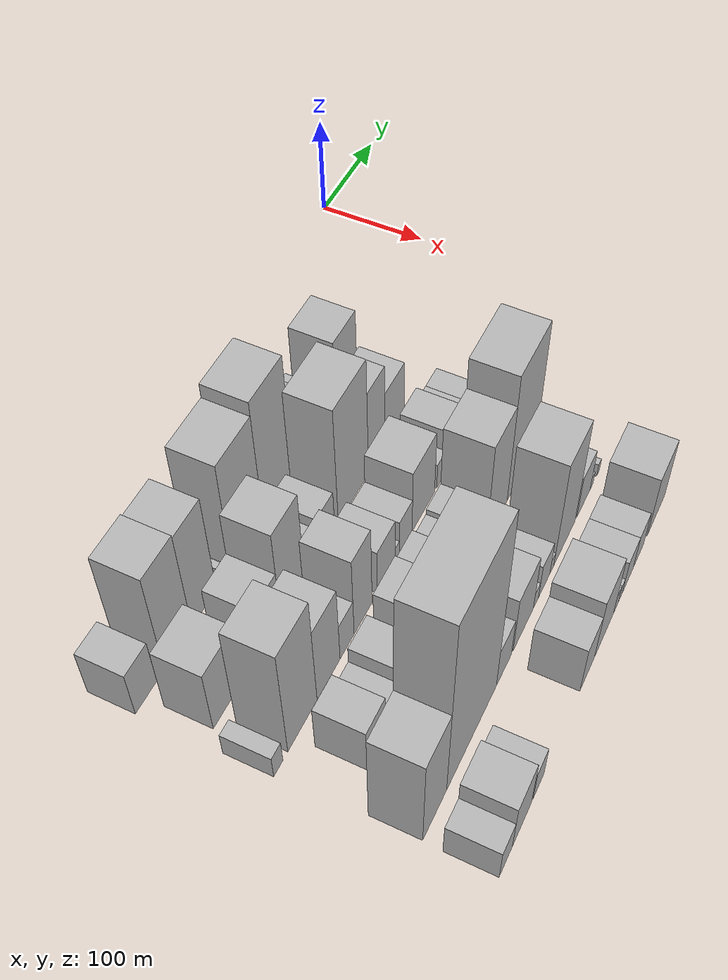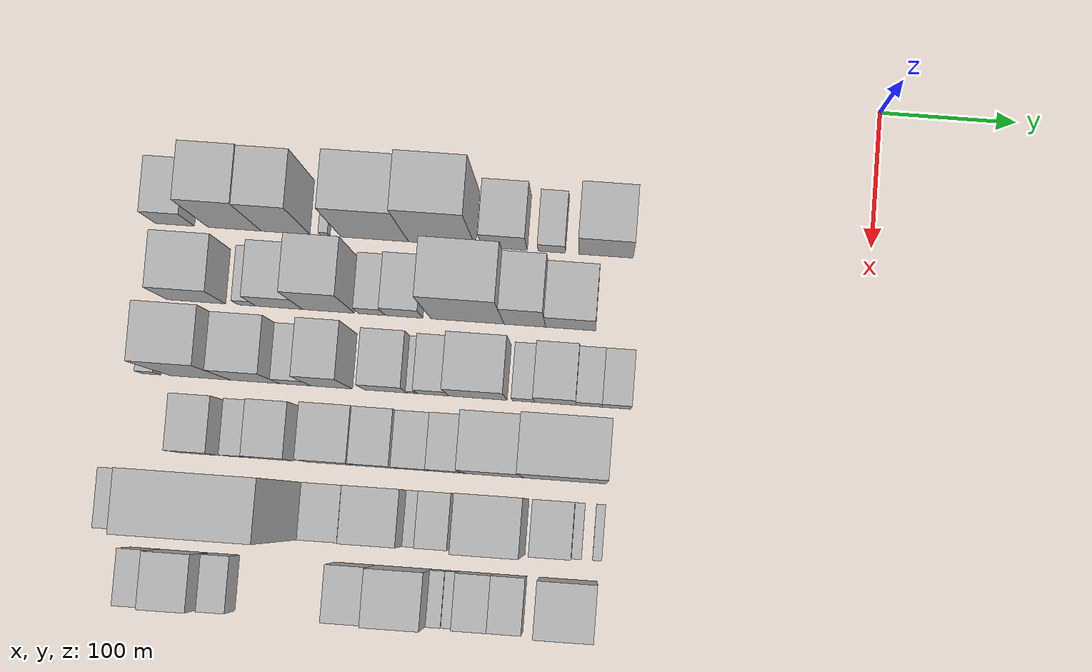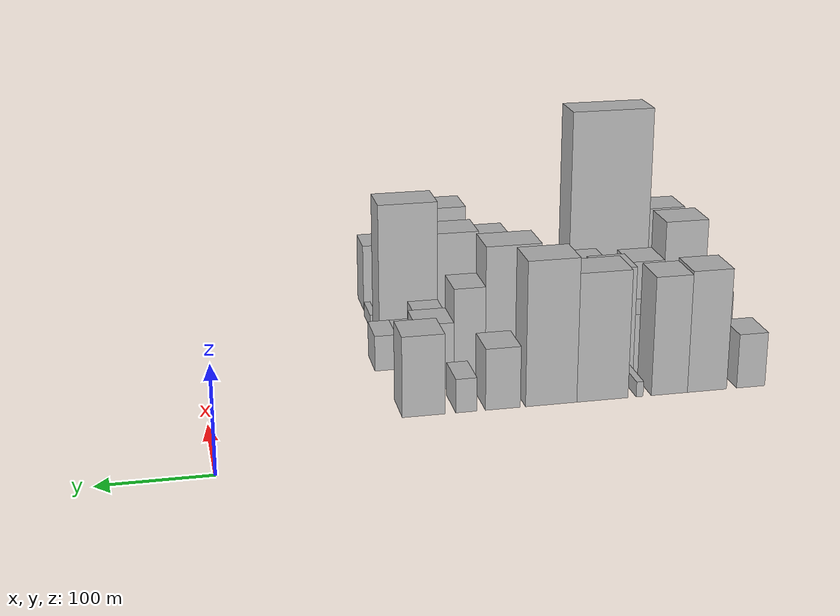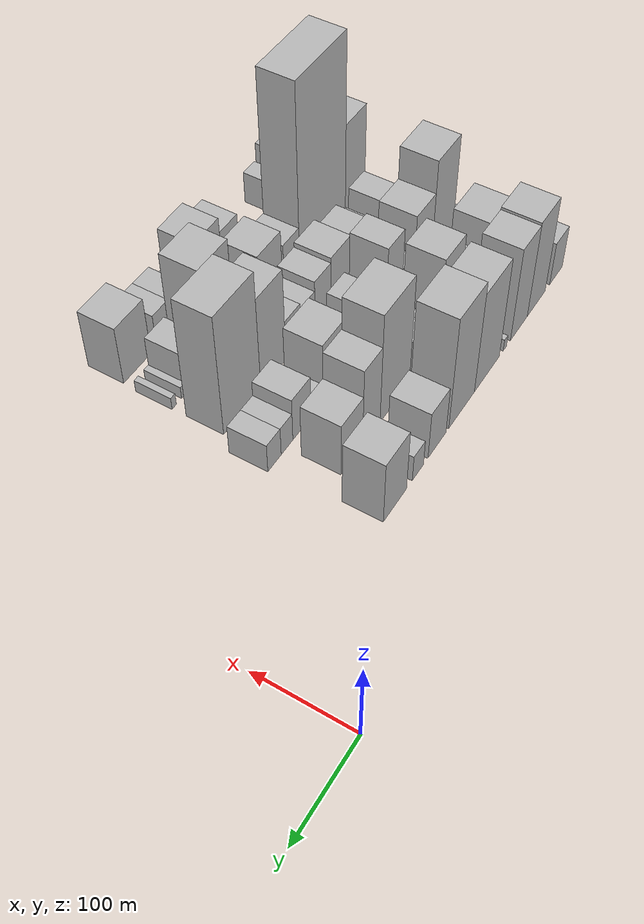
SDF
<sdf version="1.6">
 <world name="default">
  <model name="building_10">
   <static>1</static>
   <pose>100.0000 -506.7695 0 0.000000 0.000000 0.000000</pose>
   <link name="link">
    <pose>0 0 27.00 0 0 0</pose>
    <collision name="collision"><geometry><box><size>40.0000 28.3243 54.0000</size></box></geometry></collision>
    <visual name="visual">
     <cast_shadows>0</cast_shadows>
     <geometry><box><size>40.0000 28.3243 54.0000</size></box></geometry>
     <material>
      <script>
       <uri>model://HANNAS_wall/materials/scripts</uri>
       <uri>model://HANNAS_wall/materials/textures</uri>
       <name>vrc/HANNAS_wall</name>
      </script>
     </material>
    </visual>
   </link>
  </model>
  <model name="building_11">
   <static>1</static>
   <pose>100.0000 -463.1735 0 0.000000 0.000000 0.000000</pose>
   <link name="link">
    <pose>0 0 60.00 0 0 0</pose>
    <collision name="collision"><geometry><box><size>40.0000 38.8676 120.0000</size></box></geometry></collision>
    <visual name="visual">
     <cast_shadows>0</cast_shadows>
     <geometry><box><size>40.0000 38.8676 120.0000</size></box></geometry>
     <material>
      <script>
       <uri>model://HANNAS_wall/materials/scripts</uri>
       <uri>model://HANNAS_wall/materials/textures</uri>
       <name>vrc/HANNAS_wall</name>
      </script>
     </material>
    </visual>
   </link>
  </model>
  <model name="building_12">
   <static>1</static>
   <pose>100.0000 -426.0190 0 0.000000 0.000000 0.000000</pose>
   <link name="link">
    <pose>0 0 58.50 0 0 0</pose>
    <collision name="collision"><geometry><box><size>40.0000 35.4414 117.0000</size></box></geometry></collision>
    <visual name="visual">
     <cast_shadows>0</cast_shadows>
     <geometry><box><size>40.0000 35.4414 117.0000</size></box></geometry>
     <material>
      <script>
       <uri>model://HANNAS_wall/materials/scripts</uri>
       <uri>model://HANNAS_wall/materials/textures</uri>
       <name>vrc/HANNAS_wall</name>
      </script>
     </material>
    </visual>
   </link>
  </model>
  <model name="building_13">
   <static>1</static>
   <pose>100.0000 -396.9022 0 0.000000 0.000000 0.000000</pose>
   <link name="link">
    <pose>0 0 7.50 0 0 0</pose>
    <collision name="collision"><geometry><box><size>40.0000 6.7922 15.0000</size></box></geometry></collision>
    <visual name="visual">
     <cast_shadows>0</cast_shadows>
     <geometry><box><size>40.0000 6.7922 15.0000</size></box></geometry>
     <material>
      <script>
       <uri>model://HANNAS_wall/materials/scripts</uri>
       <uri>model://HANNAS_wall/materials/textures</uri>
       <name>vrc/HANNAS_wall</name>
      </script>
     </material>
    </visual>
   </link>
  </model>
  <model name="building_14">
   <static>1</static>
   <pose>100.0000 -360.7887 0 0.000000 0.000000 0.000000</pose>
   <link name="link">
    <pose>0 0 63.00 0 0 0</pose>
    <collision name="collision"><geometry><box><size>40.0000 49.4349 126.0000</size></box></geometry></collision>
    <visual name="visual">
     <cast_shadows>0</cast_shadows>
     <geometry><box><size>40.0000 49.4349 126.0000</size></box></geometry>
     <material>
      <script>
       <uri>model://HANNAS_wall/materials/scripts</uri>
       <uri>model://HANNAS_wall/materials/textures</uri>
       <name>vrc/HANNAS_wall</name>
      </script>
     </material>
    </visual>
   </link>
  </model>
  <model name="building_15">
   <static>1</static>
   <pose>100.0000 -311.6712 0 0.000000 0.000000 0.000000</pose>
   <link name="link">
    <pose>0 0 70.50 0 0 0</pose>
    <collision name="collision"><geometry><box><size>40.0000 48.8001 141.0000</size></box></geometry></collision>
    <visual name="visual">
     <cast_shadows>0</cast_shadows>
     <geometry><box><size>40.0000 48.8001 141.0000</size></box></geometry>
     <material>
      <script>
       <uri>model://HANNAS_wall/materials/scripts</uri>
       <uri>model://HANNAS_wall/materials/textures</uri>
       <name>vrc/HANNAS_wall</name>
      </script>
     </material>
    </visual>
   </link>
  </model>
  <model name="building_16">
   <static>1</static>
   <pose>100.0000 -265.8788 0 0.000000 0.000000 0.000000</pose>
   <link name="link">
    <pose>0 0 30.00 0 0 0</pose>
    <collision name="collision"><geometry><box><size>40.0000 32.7848 60.0000</size></box></geometry></collision>
    <visual name="visual">
     <cast_shadows>0</cast_shadows>
     <geometry><box><size>40.0000 32.7848 60.0000</size></box></geometry>
     <material>
      <script>
       <uri>model://HANNAS_wall/materials/scripts</uri>
       <uri>model://HANNAS_wall/materials/textures</uri>
       <name>vrc/HANNAS_wall</name>
      </script>
     </material>
    </visual>
   </link>
  </model>
  <model name="building_17">
   <static>1</static>
   <pose>100.0000 -231.6135 0 0.000000 0.000000 0.000000</pose>
   <link name="link">
    <pose>0 0 16.50 0 0 0</pose>
    <collision name="collision"><geometry><box><size>40.0000 19.7459 33.0000</size></box></geometry></collision>
    <visual name="visual">
     <cast_shadows>0</cast_shadows>
     <geometry><box><size>40.0000 19.7459 33.0000</size></box></geometry>
     <material>
      <script>
       <uri>model://HANNAS_wall/materials/scripts</uri>
       <uri>model://HANNAS_wall/materials/textures</uri>
       <name>vrc/HANNAS_wall</name>
      </script>
     </material>
    </visual>
   </link>
  </model>
  <model name="building_18">
   <static>1</static>
   <pose>100.0000 -192.0547 0 0.000000 0.000000 0.000000</pose>
   <link name="link">
    <pose>0 0 39.00 0 0 0</pose>
    <collision name="collision"><geometry><box><size>40.0000 39.3718 78.0000</size></box></geometry></collision>
    <visual name="visual">
     <cast_shadows>0</cast_shadows>
     <geometry><box><size>40.0000 39.3718 78.0000</size></box></geometry>
     <material>
      <script>
       <uri>model://HANNAS_wall/materials/scripts</uri>
       <uri>model://HANNAS_wall/materials/textures</uri>
       <name>vrc/HANNAS_wall</name>
      </script>
     </material>
    </visual>
   </link>
  </model>
  <model name="building_62">
   <static>1</static>
   <pose>155.0000 -486.0445 0 0.000000 0.000000 0.000000</pose>
   <link name="link">
    <pose>0 0 37.50 0 0 0</pose>
    <collision name="collision"><geometry><box><size>40.0000 42.2497 75.0000</size></box></geometry></collision>
    <visual name="visual">
     <cast_shadows>0</cast_shadows>
     <geometry><box><size>40.0000 42.2497 75.0000</size></box></geometry>
     <material>
      <script>
       <uri>model://HANNAS_wall/materials/scripts</uri>
       <uri>model://HANNAS_wall/materials/textures</uri>
       <name>vrc/HANNAS_wall</name>
      </script>
     </material>
    </visual>
   </link>
  </model>
  <model name="building_63">
   <static>1</static>
   <pose>155.0000 -449.4482 0 0.000000 0.000000 0.000000</pose>
   <link name="link">
    <pose>0 0 13.50 0 0 0</pose>
    <collision name="collision"><geometry><box><size>40.0000 12.9428 27.0000</size></box></geometry></collision>
    <visual name="visual">
     <cast_shadows>0</cast_shadows>
     <geometry><box><size>40.0000 12.9428 27.0000</size></box></geometry>
     <material>
      <script>
       <uri>model://HANNAS_wall/materials/scripts</uri>
       <uri>model://HANNAS_wall/materials/textures</uri>
       <name>vrc/HANNAS_wall</name>
      </script>
     </material>
    </visual>
   </link>
  </model>
  <model name="building_64">
   <static>1</static>
   <pose>155.0000 -425.9013 0 0.000000 0.000000 0.000000</pose>
   <link name="link">
    <pose>0 0 30.00 0 0 0</pose>
    <collision name="collision"><geometry><box><size>40.0000 34.1510 60.0000</size></box></geometry></collision>
    <visual name="visual">
     <cast_shadows>0</cast_shadows>
     <geometry><box><size>40.0000 34.1510 60.0000</size></box></geometry>
     <material>
      <script>
       <uri>model://HANNAS_wall/materials/scripts</uri>
       <uri>model://HANNAS_wall/materials/textures</uri>
       <name>vrc/HANNAS_wall</name>
      </script>
     </material>
    </visual>
   </link>
  </model>
  <model name="building_65">
   <static>1</static>
   <pose>155.0000 -389.9046 0 0.000000 0.000000 0.000000</pose>
   <link name="link">
    <pose>0 0 54.00 0 0 0</pose>
    <collision name="collision"><geometry><box><size>40.0000 37.8425 108.0000</size></box></geometry></collision>
    <visual name="visual">
     <cast_shadows>0</cast_shadows>
     <geometry><box><size>40.0000 37.8425 108.0000</size></box></geometry>
     <material>
      <script>
       <uri>model://HANNAS_wall/materials/scripts</uri>
       <uri>model://HANNAS_wall/materials/textures</uri>
       <name>vrc/HANNAS_wall</name>
      </script>
     </material>
    </visual>
   </link>
  </model>
  <model name="building_66">
   <static>1</static>
   <pose>155.0000 -358.2514 0 0.000000 0.000000 0.000000</pose>
   <link name="link">
    <pose>0 0 18.00 0 0 0</pose>
    <collision name="collision"><geometry><box><size>40.0000 19.4640 36.0000</size></box></geometry></collision>
    <visual name="visual">
     <cast_shadows>0</cast_shadows>
     <geometry><box><size>40.0000 19.4640 36.0000</size></box></geometry>
     <material>
      <script>
       <uri>model://HANNAS_wall/materials/scripts</uri>
       <uri>model://HANNAS_wall/materials/textures</uri>
       <name>vrc/HANNAS_wall</name>
      </script>
     </material>
    </visual>
   </link>
  </model>
  <model name="building_67">
   <static>1</static>
   <pose>155.0000 -334.8753 0 0.000000 0.000000 0.000000</pose>
   <link name="link">
    <pose>0 0 24.00 0 0 0</pose>
    <collision name="collision"><geometry><box><size>40.0000 27.2881 48.0000</size></box></geometry></collision>
    <visual name="visual">
     <cast_shadows>0</cast_shadows>
     <geometry><box><size>40.0000 27.2881 48.0000</size></box></geometry>
     <material>
      <script>
       <uri>model://HANNAS_wall/materials/scripts</uri>
       <uri>model://HANNAS_wall/materials/textures</uri>
       <name>vrc/HANNAS_wall</name>
      </script>
     </material>
    </visual>
   </link>
  </model>
  <model name="building_68">
   <static>1</static>
   <pose>155.0000 -288.7077 0 0.000000 0.000000 0.000000</pose>
   <link name="link">
    <pose>0 0 69.00 0 0 0</pose>
    <collision name="collision"><geometry><box><size>40.0000 53.0472 138.0000</size></box></geometry></collision>
    <visual name="visual">
     <cast_shadows>0</cast_shadows>
     <geometry><box><size>40.0000 53.0472 138.0000</size></box></geometry>
     <material>
      <script>
       <uri>model://HANNAS_wall/materials/scripts</uri>
       <uri>model://HANNAS_wall/materials/textures</uri>
       <name>vrc/HANNAS_wall</name>
      </script>
     </material>
    </visual>
   </link>
  </model>
  <model name="building_69">
   <static>1</static>
   <pose>155.0000 -247.0434 0 0.000000 0.000000 0.000000</pose>
   <link name="link">
    <pose>0 0 49.50 0 0 0</pose>
    <collision name="collision"><geometry><box><size>40.0000 30.2813 99.0000</size></box></geometry></collision>
    <visual name="visual">
     <cast_shadows>0</cast_shadows>
     <geometry><box><size>40.0000 30.2813 99.0000</size></box></geometry>
     <material>
      <script>
       <uri>model://HANNAS_wall/materials/scripts</uri>
       <uri>model://HANNAS_wall/materials/textures</uri>
       <name>vrc/HANNAS_wall</name>
      </script>
     </material>
    </visual>
   </link>
  </model>
  <model name="building_70">
   <static>1</static>
   <pose>155.0000 -213.8012 0 0.000000 0.000000 0.000000</pose>
   <link name="link">
    <pose>0 0 33.00 0 0 0</pose>
    <collision name="collision"><geometry><box><size>40.0000 36.2033 66.0000</size></box></geometry></collision>
    <visual name="visual">
     <cast_shadows>0</cast_shadows>
     <geometry><box><size>40.0000 36.2033 66.0000</size></box></geometry>
     <material>
      <script>
       <uri>model://HANNAS_wall/materials/scripts</uri>
       <uri>model://HANNAS_wall/materials/textures</uri>
       <name>vrc/HANNAS_wall</name>
      </script>
     </material>
    </visual>
   </link>
  </model>
  <model name="building_110">
   <static>1</static>
   <pose>210.0000 -513.4727 0 0.000000 0.000000 0.000000</pose>
   <link name="link">
    <pose>0 0 13.50 0 0 0</pose>
    <collision name="collision"><geometry><box><size>40.0000 13.1479 27.0000</size></box></geometry></collision>
    <visual name="visual">
     <cast_shadows>0</cast_shadows>
     <geometry><box><size>40.0000 13.1479 27.0000</size></box></geometry>
     <material>
      <script>
       <uri>model://HANNAS_wall/materials/scripts</uri>
       <uri>model://HANNAS_wall/materials/textures</uri>
       <name>vrc/HANNAS_wall</name>
      </script>
     </material>
    </visual>
   </link>
  </model>
  <model name="building_111">
   <static>1</static>
   <pose>210.0000 -478.1225 0 0.000000 0.000000 0.000000</pose>
   <link name="link">
    <pose>0 0 66.00 0 0 0</pose>
    <collision name="collision"><geometry><box><size>40.0000 43.5525 132.0000</size></box></geometry></collision>
    <visual name="visual">
     <cast_shadows>0</cast_shadows>
     <geometry><box><size>40.0000 43.5525 132.0000</size></box></geometry>
     <material>
      <script>
       <uri>model://HANNAS_wall/materials/scripts</uri>
       <uri>model://HANNAS_wall/materials/textures</uri>
       <name>vrc/HANNAS_wall</name>
      </script>
     </material>
    </visual>
   </link>
  </model>
  <model name="building_112">
   <static>1</static>
   <pose>210.0000 -438.4006 0 0.000000 0.000000 0.000000</pose>
   <link name="link">
    <pose>0 0 46.50 0 0 0</pose>
    <collision name="collision"><geometry><box><size>40.0000 35.8913 93.0000</size></box></geometry></collision>
    <visual name="visual">
     <cast_shadows>0</cast_shadows>
     <geometry><box><size>40.0000 35.8913 93.0000</size></box></geometry>
     <material>
      <script>
       <uri>model://HANNAS_wall/materials/scripts</uri>
       <uri>model://HANNAS_wall/materials/textures</uri>
       <name>vrc/HANNAS_wall</name>
      </script>
     </material>
    </visual>
   </link>
  </model>
  <model name="building_113">
   <static>1</static>
   <pose>210.0000 -409.1339 0 0.000000 0.000000 0.000000</pose>
   <link name="link">
    <pose>0 0 22.50 0 0 0</pose>
    <collision name="collision"><geometry><box><size>40.0000 22.6420 45.0000</size></box></geometry></collision>
    <visual name="visual">
     <cast_shadows>0</cast_shadows>
     <geometry><box><size>40.0000 22.6420 45.0000</size></box></geometry>
     <material>
      <script>
       <uri>model://HANNAS_wall/materials/scripts</uri>
       <uri>model://HANNAS_wall/materials/textures</uri>
       <name>vrc/HANNAS_wall</name>
      </script>
     </material>
    </visual>
   </link>
  </model>
  <model name="building_114">
   <static>1</static>
   <pose>210.0000 -382.8761 0 0.000000 0.000000 0.000000</pose>
   <link name="link">
    <pose>0 0 48.00 0 0 0</pose>
    <collision name="collision"><geometry><box><size>40.0000 29.8737 96.0000</size></box></geometry></collision>
    <visual name="visual">
     <cast_shadows>0</cast_shadows>
     <geometry><box><size>40.0000 29.8737 96.0000</size></box></geometry>
     <material>
      <script>
       <uri>model://HANNAS_wall/materials/scripts</uri>
       <uri>model://HANNAS_wall/materials/textures</uri>
       <name>vrc/HANNAS_wall</name>
      </script>
     </material>
    </visual>
   </link>
  </model>
  <model name="building_115">
   <static>1</static>
   <pose>210.0000 -343.4628 0 0.000000 0.000000 0.000000</pose>
   <link name="link">
    <pose>0 0 27.00 0 0 0</pose>
    <collision name="collision"><geometry><box><size>40.0000 30.9529 54.0000</size></box></geometry></collision>
    <visual name="visual">
     <cast_shadows>0</cast_shadows>
     <geometry><box><size>40.0000 30.9529 54.0000</size></box></geometry>
     <material>
      <script>
       <uri>model://HANNAS_wall/materials/scripts</uri>
       <uri>model://HANNAS_wall/materials/textures</uri>
       <name>vrc/HANNAS_wall</name>
      </script>
     </material>
    </visual>
   </link>
  </model>
  <model name="building_116">
   <static>1</static>
   <pose>210.0000 -324.3036 0 0.000000 0.000000 0.000000</pose>
   <link name="link">
    <pose>0 0 9.00 0 0 0</pose>
    <collision name="collision"><geometry><box><size>40.0000 7.3657 18.0000</size></box></geometry></collision>
    <visual name="visual">
     <cast_shadows>0</cast_shadows>
     <geometry><box><size>40.0000 7.3657 18.0000</size></box></geometry>
     <material>
      <script>
       <uri>model://HANNAS_wall/materials/scripts</uri>
       <uri>model://HANNAS_wall/materials/textures</uri>
       <name>vrc/HANNAS_wall</name>
      </script>
     </material>
    </visual>
   </link>
  </model>
  <model name="building_117">
   <static>1</static>
   <pose>210.0000 -309.2652 0 0.000000 0.000000 0.000000</pose>
   <link name="link">
    <pose>0 0 21.00 0 0 0</pose>
    <collision name="collision"><geometry><box><size>40.0000 22.7111 42.0000</size></box></geometry></collision>
    <visual name="visual">
     <cast_shadows>0</cast_shadows>
     <geometry><box><size>40.0000 22.7111 42.0000</size></box></geometry>
     <material>
      <script>
       <uri>model://HANNAS_wall/materials/scripts</uri>
       <uri>model://HANNAS_wall/materials/textures</uri>
       <name>vrc/HANNAS_wall</name>
      </script>
     </material>
    </visual>
   </link>
  </model>
  <model name="building_118">
   <static>1</static>
   <pose>210.0000 -276.8485 0 0.000000 0.000000 0.000000</pose>
   <link name="link">
    <pose>0 0 37.50 0 0 0</pose>
    <collision name="collision"><geometry><box><size>40.0000 42.1223 75.0000</size></box></geometry></collision>
    <visual name="visual">
     <cast_shadows>0</cast_shadows>
     <geometry><box><size>40.0000 42.1223 75.0000</size></box></geometry>
     <material>
      <script>
       <uri>model://HANNAS_wall/materials/scripts</uri>
       <uri>model://HANNAS_wall/materials/textures</uri>
       <name>vrc/HANNAS_wall</name>
      </script>
     </material>
    </visual>
   </link>
  </model>
  <model name="building_119">
   <static>1</static>
   <pose>210.0000 -243.8144 0 0.000000 0.000000 0.000000</pose>
   <link name="link">
    <pose>0 0 15.00 0 0 0</pose>
    <collision name="collision"><geometry><box><size>40.0000 15.9461 30.0000</size></box></geometry></collision>
    <visual name="visual">
     <cast_shadows>0</cast_shadows>
     <geometry><box><size>40.0000 15.9461 30.0000</size></box></geometry>
     <material>
      <script>
       <uri>model://HANNAS_wall/materials/scripts</uri>
       <uri>model://HANNAS_wall/materials/textures</uri>
       <name>vrc/HANNAS_wall</name>
      </script>
     </material>
    </visual>
   </link>
  </model>
  <model name="building_120">
   <static>1</static>
   <pose>210.0000 -220.8282 0 0.000000 0.000000 0.000000</pose>
   <link name="link">
    <pose>0 0 27.00 0 0 0</pose>
    <collision name="collision"><geometry><box><size>40.0000 30.0261 54.0000</size></box></geometry></collision>
    <visual name="visual">
     <cast_shadows>0</cast_shadows>
     <geometry><box><size>40.0000 30.0261 54.0000</size></box></geometry>
     <material>
      <script>
       <uri>model://HANNAS_wall/materials/scripts</uri>
       <uri>model://HANNAS_wall/materials/textures</uri>
       <name>vrc/HANNAS_wall</name>
      </script>
     </material>
    </visual>
   </link>
  </model>
  <model name="building_121">
   <static>1</static>
   <pose>210.0000 -196.4307 0 0.000000 0.000000 0.000000</pose>
   <link name="link">
    <pose>0 0 18.00 0 0 0</pose>
    <collision name="collision"><geometry><box><size>40.0000 18.7690 36.0000</size></box></geometry></collision>
    <visual name="visual">
     <cast_shadows>0</cast_shadows>
     <geometry><box><size>40.0000 18.7690 36.0000</size></box></geometry>
     <material>
      <script>
       <uri>model://HANNAS_wall/materials/scripts</uri>
       <uri>model://HANNAS_wall/materials/textures</uri>
       <name>vrc/HANNAS_wall</name>
      </script>
     </material>
    </visual>
   </link>
  </model>
  <model name="building_122">
   <static>1</static>
   <pose>210.0000 -176.4947 0 0.000000 0.000000 0.000000</pose>
   <link name="link">
    <pose>0 0 18.00 0 0 0</pose>
    <collision name="collision"><geometry><box><size>40.0000 21.1028 36.0000</size></box></geometry></collision>
    <visual name="visual">
     <cast_shadows>0</cast_shadows>
     <geometry><box><size>40.0000 21.1028 36.0000</size></box></geometry>
     <material>
      <script>
       <uri>model://HANNAS_wall/materials/scripts</uri>
       <uri>model://HANNAS_wall/materials/textures</uri>
       <name>vrc/HANNAS_wall</name>
      </script>
     </material>
    </visual>
   </link>
  </model>
  <model name="building_165">
   <static>1</static>
   <pose>265.0000 -473.5946 0 0.000000 0.000000 0.000000</pose>
   <link name="link">
    <pose>0 0 27.00 0 0 0</pose>
    <collision name="collision"><geometry><box><size>40.0000 29.2351 54.0000</size></box></geometry></collision>
    <visual name="visual">
     <cast_shadows>0</cast_shadows>
     <geometry><box><size>40.0000 29.2351 54.0000</size></box></geometry>
     <material>
      <script>
       <uri>model://HANNAS_wall/materials/scripts</uri>
       <uri>model://HANNAS_wall/materials/textures</uri>
       <name>vrc/HANNAS_wall</name>
      </script>
     </material>
    </visual>
   </link>
  </model>
  <model name="building_166">
   <static>1</static>
   <pose>265.0000 -444.6396 0 0.000000 0.000000 0.000000</pose>
   <link name="link">
    <pose>0 0 16.50 0 0 0</pose>
    <collision name="collision"><geometry><box><size>40.0000 18.6748 33.0000</size></box></geometry></collision>
    <visual name="visual">
     <cast_shadows>0</cast_shadows>
     <geometry><box><size>40.0000 18.6748 33.0000</size></box></geometry>
     <material>
      <script>
       <uri>model://HANNAS_wall/materials/scripts</uri>
       <uri>model://HANNAS_wall/materials/textures</uri>
       <name>vrc/HANNAS_wall</name>
      </script>
     </material>
    </visual>
   </link>
  </model>
  <model name="building_167">
   <static>1</static>
   <pose>265.0000 -420.5488 0 0.000000 0.000000 0.000000</pose>
   <link name="link">
    <pose>0 0 25.50 0 0 0</pose>
    <collision name="collision"><geometry><box><size>40.0000 29.5069 51.0000</size></box></geometry></collision>
    <visual name="visual">
     <cast_shadows>0</cast_shadows>
     <geometry><box><size>40.0000 29.5069 51.0000</size></box></geometry>
     <material>
      <script>
       <uri>model://HANNAS_wall/materials/scripts</uri>
       <uri>model://HANNAS_wall/materials/textures</uri>
       <name>vrc/HANNAS_wall</name>
      </script>
     </material>
    </visual>
   </link>
  </model>
  <model name="building_168">
   <static>1</static>
   <pose>265.0000 -377.9930 0 0.000000 0.000000 0.000000</pose>
   <link name="link">
    <pose>0 0 31.50 0 0 0</pose>
    <collision name="collision"><geometry><box><size>40.0000 35.6047 63.0000</size></box></geometry></collision>
    <visual name="visual">
     <cast_shadows>0</cast_shadows>
     <geometry><box><size>40.0000 35.6047 63.0000</size></box></geometry>
     <material>
      <script>
       <uri>model://HANNAS_wall/materials/scripts</uri>
       <uri>model://HANNAS_wall/materials/textures</uri>
       <name>vrc/HANNAS_wall</name>
      </script>
     </material>
    </visual>
   </link>
  </model>
  <model name="building_169">
   <static>1</static>
   <pose>265.0000 -345.8460 0 0.000000 0.000000 0.000000</pose>
   <link name="link">
    <pose>0 0 28.50 0 0 0</pose>
    <collision name="collision"><geometry><box><size>40.0000 28.6892 57.0000</size></box></geometry></collision>
    <visual name="visual">
     <cast_shadows>0</cast_shadows>
     <geometry><box><size>40.0000 28.6892 57.0000</size></box></geometry>
     <material>
      <script>
       <uri>model://HANNAS_wall/materials/scripts</uri>
       <uri>model://HANNAS_wall/materials/textures</uri>
       <name>vrc/HANNAS_wall</name>
      </script>
     </material>
    </visual>
   </link>
  </model>
  <model name="building_170">
   <static>1</static>
   <pose>265.0000 -319.1171 0 0.000000 0.000000 0.000000</pose>
   <link name="link">
    <pose>0 0 22.50 0 0 0</pose>
    <collision name="collision"><geometry><box><size>40.0000 24.7686 45.0000</size></box></geometry></collision>
    <visual name="visual">
     <cast_shadows>0</cast_shadows>
     <geometry><box><size>40.0000 24.7686 45.0000</size></box></geometry>
     <material>
      <script>
       <uri>model://HANNAS_wall/materials/scripts</uri>
       <uri>model://HANNAS_wall/materials/textures</uri>
       <name>vrc/HANNAS_wall</name>
      </script>
     </material>
    </visual>
   </link>
  </model>
  <model name="building_171">
   <static>1</static>
   <pose>265.0000 -293.7078 0 0.000000 0.000000 0.000000</pose>
   <link name="link">
    <pose>0 0 25.50 0 0 0</pose>
    <collision name="collision"><geometry><box><size>40.0000 26.0502 51.0000</size></box></geometry></collision>
    <visual name="visual">
     <cast_shadows>0</cast_shadows>
     <geometry><box><size>40.0000 26.0502 51.0000</size></box></geometry>
     <material>
      <script>
       <uri>model://HANNAS_wall/materials/scripts</uri>
       <uri>model://HANNAS_wall/materials/textures</uri>
       <name>vrc/HANNAS_wall</name>
      </script>
     </material>
    </visual>
   </link>
  </model>
  <model name="building_172">
   <static>1</static>
   <pose>265.0000 -259.9286 0 0.000000 0.000000 0.000000</pose>
   <link name="link">
    <pose>0 0 58.50 0 0 0</pose>
    <collision name="collision"><geometry><box><size>40.0000 41.5083 117.0000</size></box></geometry></collision>
    <visual name="visual">
     <cast_shadows>0</cast_shadows>
     <geometry><box><size>40.0000 41.5083 117.0000</size></box></geometry>
     <material>
      <script>
       <uri>model://HANNAS_wall/materials/scripts</uri>
       <uri>model://HANNAS_wall/materials/textures</uri>
       <name>vrc/HANNAS_wall</name>
      </script>
     </material>
    </visual>
   </link>
  </model>
  <model name="building_173">
   <static>1</static>
   <pose>265.0000 -209.4524 0 0.000000 0.000000 0.000000</pose>
   <link name="link">
    <pose>0 0 75.00 0 0 0</pose>
    <collision name="collision"><geometry><box><size>40.0000 59.4441 150.0000</size></box></geometry></collision>
    <visual name="visual">
     <cast_shadows>0</cast_shadows>
     <geometry><box><size>40.0000 59.4441 150.0000</size></box></geometry>
     <material>
      <script>
       <uri>model://HANNAS_wall/materials/scripts</uri>
       <uri>model://HANNAS_wall/materials/textures</uri>
       <name>vrc/HANNAS_wall</name>
      </script>
     </material>
    </visual>
   </link>
  </model>
  <model name="building_213">
   <static>1</static>
   <pose>320.0000 -497.5087 0 0.000000 0.000000 0.000000</pose>
   <link name="link">
    <pose>0 0 55.50 0 0 0</pose>
    <collision name="collision"><geometry><box><size>40.0000 38.4766 111.0000</size></box></geometry></collision>
    <visual name="visual">
     <cast_shadows>0</cast_shadows>
     <geometry><box><size>40.0000 38.4766 111.0000</size></box></geometry>
     <material>
      <script>
       <uri>model://HANNAS_wall/materials/scripts</uri>
       <uri>model://HANNAS_wall/materials/textures</uri>
       <name>vrc/HANNAS_wall</name>
      </script>
     </material>
    </visual>
   </link>
  </model>
  <model name="building_214">
   <static>1</static>
   <pose>320.0000 -434.9837 0 0.000000 0.000000 0.000000</pose>
   <link name="link">
    <pose>0 0 109.50 0 0 0</pose>
    <collision name="collision"><geometry><box><size>40.0000 86.5735 219.0000</size></box></geometry></collision>
    <visual name="visual">
     <cast_shadows>0</cast_shadows>
     <geometry><box><size>40.0000 86.5735 219.0000</size></box></geometry>
     <material>
      <script>
       <uri>model://HANNAS_wall/materials/scripts</uri>
       <uri>model://HANNAS_wall/materials/textures</uri>
       <name>vrc/HANNAS_wall</name>
      </script>
     </material>
    </visual>
   </link>
  </model>
  <model name="building_215">
   <static>1</static>
   <pose>320.0000 -377.7248 0 0.000000 0.000000 0.000000</pose>
   <link name="link">
    <pose>0 0 24.00 0 0 0</pose>
    <collision name="collision"><geometry><box><size>40.0000 27.9443 48.0000</size></box></geometry></collision>
    <visual name="visual">
     <cast_shadows>0</cast_shadows>
     <geometry><box><size>40.0000 27.9443 48.0000</size></box></geometry>
     <material>
      <script>
       <uri>model://HANNAS_wall/materials/scripts</uri>
       <uri>model://HANNAS_wall/materials/textures</uri>
       <name>vrc/HANNAS_wall</name>
      </script>
     </material>
    </visual>
   </link>
  </model>
  <model name="building_216">
   <static>1</static>
   <pose>320.0000 -340.9839 0 0.000000 0.000000 0.000000</pose>
   <link name="link">
    <pose>0 0 34.50 0 0 0</pose>
    <collision name="collision"><geometry><box><size>40.0000 39.5375 69.0000</size></box></geometry></collision>
    <visual name="visual">
     <cast_shadows>0</cast_shadows>
     <geometry><box><size>40.0000 39.5375 69.0000</size></box></geometry>
     <material>
      <script>
       <uri>model://HANNAS_wall/materials/scripts</uri>
       <uri>model://HANNAS_wall/materials/textures</uri>
       <name>vrc/HANNAS_wall</name>
      </script>
     </material>
    </visual>
   </link>
  </model>
  <model name="building_217">
   <static>1</static>
   <pose>320.0000 -316.0597 0 0.000000 0.000000 0.000000</pose>
   <link name="link">
    <pose>0 0 10.50 0 0 0</pose>
    <collision name="collision"><geometry><box><size>40.0000 10.3108 21.0000</size></box></geometry></collision>
    <visual name="visual">
     <cast_shadows>0</cast_shadows>
     <geometry><box><size>40.0000 10.3108 21.0000</size></box></geometry>
     <material>
      <script>
       <uri>model://HANNAS_wall/materials/scripts</uri>
       <uri>model://HANNAS_wall/materials/textures</uri>
       <name>vrc/HANNAS_wall</name>
      </script>
     </material>
    </visual>
   </link>
  </model>
  <model name="building_218">
   <static>1</static>
   <pose>320.0000 -299.3911 0 0.000000 0.000000 0.000000</pose>
   <link name="link">
    <pose>0 0 21.00 0 0 0</pose>
    <collision name="collision"><geometry><box><size>40.0000 23.0265 42.0000</size></box></geometry></collision>
    <visual name="visual">
     <cast_shadows>0</cast_shadows>
     <geometry><box><size>40.0000 23.0265 42.0000</size></box></geometry>
     <material>
      <script>
       <uri>model://HANNAS_wall/materials/scripts</uri>
       <uri>model://HANNAS_wall/materials/textures</uri>
       <name>vrc/HANNAS_wall</name>
      </script>
     </material>
    </visual>
   </link>
  </model>
  <model name="building_219">
   <static>1</static>
   <pose>320.0000 -283.8162 0 0.000000 0.000000 0.000000</pose>
   <link name="link">
    <pose>0 0 9.00 0 0 0</pose>
    <collision name="collision"><geometry><box><size>40.0000 8.1233 18.0000</size></box></geometry></collision>
    <visual name="visual">
     <cast_shadows>0</cast_shadows>
     <geometry><box><size>40.0000 8.1233 18.0000</size></box></geometry>
     <material>
      <script>
       <uri>model://HANNAS_wall/materials/scripts</uri>
       <uri>model://HANNAS_wall/materials/textures</uri>
       <name>vrc/HANNAS_wall</name>
      </script>
     </material>
    </visual>
   </link>
  </model>
  <model name="building_220">
   <static>1</static>
   <pose>320.0000 -257.1824 0 0.000000 0.000000 0.000000</pose>
   <link name="link">
    <pose>0 0 63.00 0 0 0</pose>
    <collision name="collision"><geometry><box><size>40.0000 45.1444 126.0000</size></box></geometry></collision>
    <visual name="visual">
     <cast_shadows>0</cast_shadows>
     <geometry><box><size>40.0000 45.1444 126.0000</size></box></geometry>
     <material>
      <script>
       <uri>model://HANNAS_wall/materials/scripts</uri>
       <uri>model://HANNAS_wall/materials/textures</uri>
       <name>vrc/HANNAS_wall</name>
      </script>
     </material>
    </visual>
   </link>
  </model>
  <model name="building_221">
   <static>1</static>
   <pose>320.0000 -215.8403 0 0.000000 0.000000 0.000000</pose>
   <link name="link">
    <pose>0 0 25.50 0 0 0</pose>
    <collision name="collision"><geometry><box><size>40.0000 29.5397 51.0000</size></box></geometry></collision>
    <visual name="visual">
     <cast_shadows>0</cast_shadows>
     <geometry><box><size>40.0000 29.5397 51.0000</size></box></geometry>
     <material>
      <script>
       <uri>model://HANNAS_wall/materials/scripts</uri>
       <uri>model://HANNAS_wall/materials/textures</uri>
       <name>vrc/HANNAS_wall</name>
      </script>
     </material>
    </visual>
   </link>
  </model>
  <model name="building_222">
   <static>1</static>
   <pose>320.0000 -197.5055 0 0.000000 0.000000 0.000000</pose>
   <link name="link">
    <pose>0 0 7.50 0 0 0</pose>
    <collision name="collision"><geometry><box><size>40.0000 7.1299 15.0000</size></box></geometry></collision>
    <visual name="visual">
     <cast_shadows>0</cast_shadows>
     <geometry><box><size>40.0000 7.1299 15.0000</size></box></geometry>
     <material>
      <script>
       <uri>model://HANNAS_wall/materials/scripts</uri>
       <uri>model://HANNAS_wall/materials/textures</uri>
       <name>vrc/HANNAS_wall</name>
      </script>
     </material>
    </visual>
   </link>
  </model>
  <model name="building_223">
   <static>1</static>
   <pose>320.0000 -182.6568 0 0.000000 0.000000 0.000000</pose>
   <link name="link">
    <pose>0 0 7.50 0 0 0</pose>
    <collision name="collision"><geometry><box><size>40.0000 6.5675 15.0000</size></box></geometry></collision>
    <visual name="visual">
     <cast_shadows>0</cast_shadows>
     <geometry><box><size>40.0000 6.5675 15.0000</size></box></geometry>
     <material>
      <script>
       <uri>model://HANNAS_wall/materials/scripts</uri>
       <uri>model://HANNAS_wall/materials/textures</uri>
       <name>vrc/HANNAS_wall</name>
      </script>
     </material>
    </visual>
   </link>
  </model>
  <model name="building_262">
   <static>1</static>
   <pose>375.0000 -506.6495 0 0.000000 0.000000 0.000000</pose>
   <link name="link">
    <pose>0 0 19.50 0 0 0</pose>
    <collision name="collision"><geometry><box><size>40.0000 22.1629 39.0000</size></box></geometry></collision>
    <visual name="visual">
     <cast_shadows>0</cast_shadows>
     <geometry><box><size>40.0000 22.1629 39.0000</size></box></geometry>
     <material>
      <script>
       <uri>model://HANNAS_wall/materials/scripts</uri>
       <uri>model://HANNAS_wall/materials/textures</uri>
       <name>vrc/HANNAS_wall</name>
      </script>
     </material>
    </visual>
   </link>
  </model>
  <model name="building_263">
   <static>1</static>
   <pose>375.0000 -478.7372 0 0.000000 0.000000 0.000000</pose>
   <link name="link">
    <pose>0 0 30.00 0 0 0</pose>
    <collision name="collision"><geometry><box><size>40.0000 33.6616 60.0000</size></box></geometry></collision>
    <visual name="visual">
     <cast_shadows>0</cast_shadows>
     <geometry><box><size>40.0000 33.6616 60.0000</size></box></geometry>
     <material>
      <script>
       <uri>model://HANNAS_wall/materials/scripts</uri>
       <uri>model://HANNAS_wall/materials/textures</uri>
       <name>vrc/HANNAS_wall</name>
      </script>
     </material>
    </visual>
   </link>
  </model>
  <model name="building_264">
   <static>1</static>
   <pose>375.0000 -448.8621 0 0.000000 0.000000 0.000000</pose>
   <link name="link">
    <pose>0 0 19.50 0 0 0</pose>
    <collision name="collision"><geometry><box><size>40.0000 20.0886 39.0000</size></box></geometry></collision>
    <visual name="visual">
     <cast_shadows>0</cast_shadows>
     <geometry><box><size>40.0000 20.0886 39.0000</size></box></geometry>
     <material>
      <script>
       <uri>model://HANNAS_wall/materials/scripts</uri>
       <uri>model://HANNAS_wall/materials/textures</uri>
       <name>vrc/HANNAS_wall</name>
      </script>
     </material>
    </visual>
   </link>
  </model>
  <model name="building_265">
   <static>1</static>
   <pose>375.0000 -355.0406 0 0.000000 0.000000 0.000000</pose>
   <link name="link">
    <pose>0 0 28.50 0 0 0</pose>
    <collision name="collision"><geometry><box><size>40.0000 29.1848 57.0000</size></box></geometry></collision>
    <visual name="visual">
     <cast_shadows>0</cast_shadows>
     <geometry><box><size>40.0000 29.1848 57.0000</size></box></geometry>
     <material>
      <script>
       <uri>model://HANNAS_wall/materials/scripts</uri>
       <uri>model://HANNAS_wall/materials/textures</uri>
       <name>vrc/HANNAS_wall</name>
      </script>
     </material>
    </visual>
   </link>
  </model>
  <model name="building_266">
   <static>1</static>
   <pose>375.0000 -320.1899 0 0.000000 0.000000 0.000000</pose>
   <link name="link">
    <pose>0 0 37.50 0 0 0</pose>
    <collision name="collision"><geometry><box><size>40.0000 40.5166 75.0000</size></box></geometry></collision>
    <visual name="visual">
     <cast_shadows>0</cast_shadows>
     <geometry><box><size>40.0000 40.5166 75.0000</size></box></geometry>
     <material>
      <script>
       <uri>model://HANNAS_wall/materials/scripts</uri>
       <uri>model://HANNAS_wall/materials/textures</uri>
       <name>vrc/HANNAS_wall</name>
      </script>
     </material>
    </visual>
   </link>
  </model>
  <model name="building_267">
   <static>1</static>
   <pose>375.0000 -294.6321 0 0.000000 0.000000 0.000000</pose>
   <link name="link">
    <pose>0 0 12.00 0 0 0</pose>
    <collision name="collision"><geometry><box><size>40.0000 10.5990 24.0000</size></box></geometry></collision>
    <visual name="visual">
     <cast_shadows>0</cast_shadows>
     <geometry><box><size>40.0000 10.5990 24.0000</size></box></geometry>
     <material>
      <script>
       <uri>model://HANNAS_wall/materials/scripts</uri>
       <uri>model://HANNAS_wall/materials/textures</uri>
       <name>vrc/HANNAS_wall</name>
      </script>
     </material>
    </visual>
   </link>
  </model>
  <model name="building_268">
   <static>1</static>
   <pose>375.0000 -285.0669 0 0.000000 0.000000 0.000000</pose>
   <link name="link">
    <pose>0 0 10.50 0 0 0</pose>
    <collision name="collision"><geometry><box><size>40.0000 8.5314 21.0000</size></box></geometry></collision>
    <visual name="visual">
     <cast_shadows>0</cast_shadows>
     <geometry><box><size>40.0000 8.5314 21.0000</size></box></geometry>
     <material>
      <script>
       <uri>model://HANNAS_wall/materials/scripts</uri>
       <uri>model://HANNAS_wall/materials/textures</uri>
       <name>vrc/HANNAS_wall</name>
      </script>
     </material>
    </visual>
   </link>
  </model>
  <model name="building_269">
   <static>1</static>
   <pose>375.0000 -268.4119 0 0.000000 0.000000 0.000000</pose>
   <link name="link">
    <pose>0 0 21.00 0 0 0</pose>
    <collision name="collision"><geometry><box><size>40.0000 24.7786 42.0000</size></box></geometry></collision>
    <visual name="visual">
     <cast_shadows>0</cast_shadows>
     <geometry><box><size>40.0000 24.7786 42.0000</size></box></geometry>
     <material>
      <script>
       <uri>model://HANNAS_wall/materials/scripts</uri>
       <uri>model://HANNAS_wall/materials/textures</uri>
       <name>vrc/HANNAS_wall</name>
      </script>
     </material>
    </visual>
   </link>
  </model>
  <model name="building_270">
   <static>1</static>
   <pose>375.0000 -243.9555 0 0.000000 0.000000 0.000000</pose>
   <link name="link">
    <pose>0 0 21.00 0 0 0</pose>
    <collision name="collision"><geometry><box><size>40.0000 24.1341 42.0000</size></box></geometry></collision>
    <visual name="visual">
     <cast_shadows>0</cast_shadows>
     <geometry><box><size>40.0000 24.1341 42.0000</size></box></geometry>
     <material>
      <script>
       <uri>model://HANNAS_wall/materials/scripts</uri>
       <uri>model://HANNAS_wall/materials/textures</uri>
       <name>vrc/HANNAS_wall</name>
      </script>
     </material>
    </visual>
   </link>
  </model>
  <model name="building_271">
   <static>1</static>
   <pose>375.0000 -202.1199 0 0.000000 0.000000 0.000000</pose>
   <link name="link">
    <pose>0 0 36.00 0 0 0</pose>
    <collision name="collision"><geometry><box><size>40.0000 41.5372 72.0000</size></box></geometry></collision>
    <visual name="visual">
     <cast_shadows>0</cast_shadows>
     <geometry><box><size>40.0000 41.5372 72.0000</size></box></geometry>
     <material>
      <script>
       <uri>model://HANNAS_wall/materials/scripts</uri>
       <uri>model://HANNAS_wall/materials/textures</uri>
       <name>vrc/HANNAS_wall</name>
      </script>
     </material>
    </visual>
   </link>
  </model>
 </world>
</sdf>
